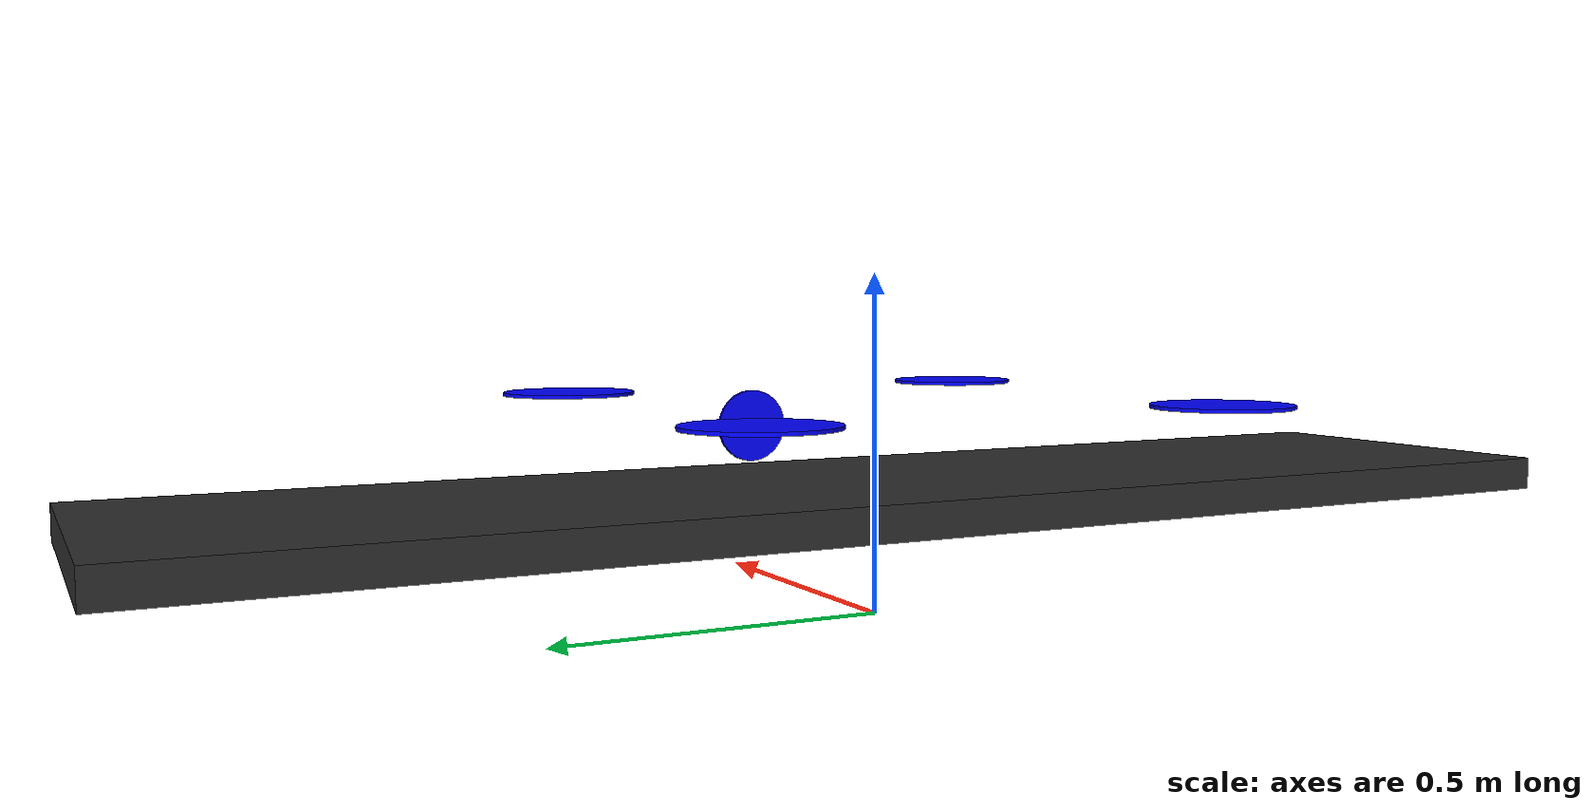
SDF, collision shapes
<?xml version="1.0"?>
<sdf version='1.10'>
  <model name='twostone1'>
    <pose>0 0 0.246 0 0 0</pose>
    <link name='base_link'>
      <pose>0 0 0 0 0 0</pose>
      <inertial>
        <pose>0 0 0 0 0 0</pose>
        <mass>5</mass>
        <inertia>
          <ixx>0.477708333333</ixx>
          <ixy>0</ixy>
          <ixz>0</ixz>
          <iyy>0.341666666667</iyy>
          <iyz>0</iyz>
          <izz>0.811041666667</izz>
        </inertia>
      </inertial>
      <collision name='base_link_collision'>
        <pose>0 0 -0.07 0 0 0</pose>
        <geometry>
          <box>
            <size>0.55 2.144 0.05</size>
          </box>
        </geometry>
        <surface>
          <contact>
            <ode>
              <kp>100000</kp>
              <kd>1.0</kd>
              <max_vel>0.1</max_vel>
              <min_depth>0.001</min_depth>
            </ode>
          </contact>
          <friction>
            <ode/>
          </friction>
        </surface>
      </collision>
      <visual name='base_link_visual'>
        <pose>0.13 0 0 0 0 3.1415926536</pose>
        <geometry>
          <mesh>
            <scale>1 1 1</scale>
            <uri>model://twostone1/meshes/test.dae</uri>
          </mesh>
        </geometry>
        <material>
          <ambient>.175 .175 .175 1.0</ambient>
          <diffuse>.175 .175 .175 1.0</diffuse>
        </material>
      </visual>

      <gravity>1</gravity>
      <velocity_decay/>
      <self_collide>0</self_collide>
       <sensor name="imu_sensor" type="imu">
        <always_on>1</always_on>
        <update_rate>250</update_rate>
      </sensor>
      <sensor name="ms5611" type="altimeter">
        <always_on>true</always_on>
        <update_rate>10</update_rate>
        <altimeter>
          <vertical_position>
            <noise type="gaussian">
              <mean>0.0</mean>
              <stddev>1.0</stddev>
              <bias_mean>0.0</bias_mean>
              <bias_stddev>1.0</bias_stddev>
            </noise>
          </vertical_position>
          <vertical_velocity>
            <noise type="gaussian">
              <mean>0.0</mean>
              <stddev>1.0</stddev>
              <bias_mean>0.0</bias_mean>
              <bias_stddev>1.0</bias_stddev>
            </noise>
          </vertical_velocity>
        </altimeter>
      </sensor>
      <sensor name="LSM303D" type="magnetometer">
        <always_on>true</always_on>
        <update_rate>50</update_rate>
      </sensor>
      <sensor name="air_pressure_sensor" type="air_pressure">
        <always_on>1</always_on>
        <update_rate>50</update_rate>
        <air_pressure>
          <pressure>
            <noise type="gaussian">
              <mean>0</mean>
              <stddev>0.01</stddev>
            </noise>
          </pressure>
        </air_pressure>
      </sensor>
    </link>
    <link name='rotor_0'>
      <pose>0.357 -0.353 0.07 0 0 0</pose>
      <inertial>
        <pose>0 0 0 0 0 0</pose>
        <mass>0.005</mass>
        <inertia>
          <ixx>9.75e-07</ixx>
          <ixy>0</ixy>
          <ixz>0</ixz>
          <iyy>0.000166704</iyy>
          <iyz>0</iyz>
          <izz>0.000167604</izz>
        </inertia>
      </inertial>
      <collision name='rotor_0_collision'>
        <pose>0 0 0 0 0 0</pose>
        <geometry>
          <cylinder>
            <length>0.005</length>
            <radius>0.1</radius>
          </cylinder>
        </geometry>
        <surface>
          <contact>
            <ode/>
          </contact>
          <friction>
            <ode/>
          </friction>
        </surface>
      </collision>
      <visual name='rotor_0_visual'>
        <pose>0 0 0 0 0 0</pose>
        <geometry>
          <mesh>
            <scale>1 1 1</scale>
            <uri>model://twostone1/meshes/iris_prop_ccw.dae</uri>
          </mesh>
        </geometry>
        <material>
          <ambient>0 0 1 1.0</ambient>
          <diffuse>0 0 1 1.0</diffuse>
        </material>
      </visual>
      <gravity>1</gravity>
      <velocity_decay/>
      <self_collide>0</self_collide>
    </link>
    <joint name='rotor_0_joint' type='revolute'>
      <child>rotor_0</child>
      <parent>base_link</parent>
      <axis>
        <xyz>0 0 1</xyz>
        <limit>
          <lower>-1e+16</lower>
          <upper>1e+16</upper>
        </limit>
        <dynamics>
          <spring_reference>0</spring_reference>
          <spring_stiffness>0</spring_stiffness>
        </dynamics>
      </axis>
    </joint>
    <link name='rotor_1'>
      <pose>-0.35 0.347 0.07 0 0 0</pose>
      <inertial>
        <pose>0 0 0 0 0 0</pose>
        <mass>0.005</mass>
        <inertia>
          <ixx>9.75e-07</ixx>
          <ixy>0</ixy>
          <ixz>0</ixz>
          <iyy>0.000166704</iyy>
          <iyz>0</iyz>
          <izz>0.000167604</izz>
        </inertia>
      </inertial>
      <collision name='rotor_1_collision'>
        <pose>0 0 0 0 0 0</pose>
        <geometry>
          <cylinder>
            <length>0.005</length>
            <radius>0.1</radius>
          </cylinder>
        </geometry>
        <surface>
          <contact>
            <ode/>
          </contact>
          <friction>
            <ode/>
          </friction>
        </surface>
      </collision>
      <visual name='rotor_1_visual'>
        <pose>0 0 0 0 0 0</pose>
        <geometry>
          <mesh>
            <scale>1 1 1</scale>
            <uri>model://twostone1/meshes/iris_prop_ccw.dae</uri>
          </mesh>
        </geometry>
        <material>
          <ambient>0 0 1 1.0</ambient>
          <diffuse>0 0 1 1.0</diffuse>
        </material>
      </visual>
      <gravity>1</gravity>
      <velocity_decay/>
      <self_collide>0</self_collide>
    </link>
    <joint name='rotor_1_joint' type='revolute'>
      <child>rotor_1</child>
      <parent>base_link</parent>
      <axis>
        <xyz>0 0 1</xyz>
        <limit>
          <lower>-1e+16</lower>
          <upper>1e+16</upper>
        </limit>
        <dynamics>
          <spring_reference>0</spring_reference>
          <spring_stiffness>0</spring_stiffness>
        </dynamics>
      </axis>
    </joint>
    <link name='rotor_2'>
      <pose>0.357 0.344 0.07 0 0 0</pose>
      <inertial>
        <pose>0 0 0 0 0 0</pose>
        <mass>0.005</mass>
        <inertia>
          <ixx>9.75e-07</ixx>
          <ixy>0</ixy>
          <ixz>0</ixz>
          <iyy>0.000166704</iyy>
          <iyz>0</iyz>
          <izz>0.000167604</izz>
        </inertia>
      </inertial>
      <collision name='rotor_2_collision'>
        <pose>0 0 0 0 0 0</pose>
        <geometry>
          <cylinder>
            <length>0.005</length>
            <radius>0.1</radius>
          </cylinder>
        </geometry>
        <surface>
          <contact>
            <ode/>
          </contact>
          <friction>
            <ode/>
          </friction>
        </surface>
      </collision>
      <visual name='rotor_2_visual'>
        <pose>0 0 0 0 0 0</pose>
        <geometry>
          <mesh>
            <scale>1 1 1</scale>
            <uri>model://twostone1/meshes/iris_prop_ccw.dae</uri>
          </mesh>
        </geometry>
        <material>
          <ambient>0 0 1 1.0</ambient>
          <diffuse>0 0 1 1.0</diffuse>
        </material>
      </visual>
      <gravity>1</gravity>
      <velocity_decay/>
      <self_collide>0</self_collide>
    </link>
    <joint name='rotor_2_joint' type='revolute'>
      <child>rotor_2</child>
      <parent>base_link</parent>
      <axis>
        <xyz>0 0 1</xyz>
        <limit>
          <lower>-1e+16</lower>
          <upper>1e+16</upper>
        </limit>
        <dynamics>
          <spring_reference>0</spring_reference>
          <spring_stiffness>0</spring_stiffness>
        </dynamics>
      </axis>
    </joint>
    <link name='rotor_3'>
      <pose>-0.352 -0.353 0.07 0 0 0</pose>
      <inertial>
        <pose>0 0 0 0 0 0</pose>
        <mass>0.005</mass>
        <inertia>
          <ixx>9.75e-07</ixx>
          <ixy>0</ixy>
          <ixz>0</ixz>
          <iyy>0.000166704</iyy>
          <iyz>0</iyz>
          <izz>0.000167604</izz>
        </inertia>
      </inertial>
      <collision name='rotor_3_collision'>
        <pose>0 0 0 0 0 0</pose>
        <geometry>
          <cylinder>
            <length>0.005</length>
            <radius>0.1</radius>
          </cylinder>
        </geometry>
        <surface>
          <contact>
            <ode/>
          </contact>
          <friction>
            <ode/>
          </friction>
        </surface>
      </collision>
      <visual name='rotor_3_visual'>
        <pose>0 0 0 0 0 0</pose>
        <geometry>
          <mesh>
            <scale>1 1 1</scale>
            <uri>model://twostone1/meshes/iris_prop_ccw.dae</uri>
          </mesh>
        </geometry>
        <material>
          <ambient>0 0 1 1.0</ambient>
          <diffuse>0 0 1 1.0</diffuse>
        </material>
      </visual>
      <gravity>1</gravity>
      <velocity_decay/>
      <self_collide>0</self_collide>
    </link>
    <joint name='rotor_3_joint' type='revolute'>
      <child>rotor_3</child>
      <parent>base_link</parent>
      <axis>
        <xyz>0 0 1</xyz>
        <limit>
          <lower>-1e+16</lower>
          <upper>1e+16</upper>
        </limit>
        <dynamics>
          <spring_reference>0</spring_reference>
          <spring_stiffness>0</spring_stiffness>
        </dynamics>
      </axis>
    </joint>

    <link name='rotor_puller'>
      <pose>0.47 0 0 0 1.57 0</pose>
      <inertial>
        <pose>0 0 0 0 0 0</pose>
        <mass>0.005</mass>
        <inertia>
          <ixx>9.75e-07</ixx>
          <ixy>0</ixy>
          <ixz>0</ixz>
          <iyy>0.000166704</iyy>
          <iyz>0</iyz>
          <izz>0.000167604</izz>
        </inertia>
      </inertial>
      <collision name='rotor_puller_collision'>
        <pose>0.0 0 -0.04 0 0 0</pose>
        <geometry>
          <cylinder>
            <length>0.005</length>
            <radius>0.06</radius>
          </cylinder>
        </geometry>
        <surface>
          <contact>
            <ode/>
          </contact>
          <friction>
            <ode/>
          </friction>
        </surface>
      </collision>
      <visual name='rotor_puller_visual'>
        <pose>0.02 0 -0.04 0 0 0</pose>
        <geometry>
          <mesh>
            <scale>0.8 0.8 0.8</scale>
            <uri>model://twostone1/meshes/iris_prop_ccw.dae</uri>
          </mesh>
        </geometry>
        <material>
          <ambient>0 0 1 1.0</ambient>
          <diffuse>0 0 1 1.0</diffuse>
        </material>
      </visual>
      <gravity>1</gravity>
      <velocity_decay/>
      <self_collide>0</self_collide>
    </link>
    <joint name='rotor_puller_joint' type='revolute'>
      <pose>0.0 0 0.0 0 -1.57 0</pose>
      <child>rotor_puller</child>
      <parent>base_link</parent>
      <axis>
        <xyz>1 0 0</xyz>
        <limit>
          <lower>-1e+16</lower>
          <upper>1e+16</upper>
        </limit>
        <dynamics>
          <spring_reference>0</spring_reference>
          <spring_stiffness>0</spring_stiffness>
        </dynamics>
      </axis>
    </joint>

    <link name="left_elevon">
      <inertial>
        <mass>0.00000001</mass>
        <inertia>
          <ixx>0.000001</ixx>
          <ixy>0.0</ixy>
          <iyy>0.000001</iyy>
          <ixz>0.0</ixz>
          <iyz>0.0</iyz>
          <izz>0.000001</izz>
        </inertia>
        <pose>0 0.3 0 0.00 0 0.0</pose>
      </inertial>

    </link>
    <link name="right_elevon">
      <inertial>
        <mass>0.00000001</mass>
        <inertia>
          <ixx>0.000001</ixx>
          <ixy>0.0</ixy>
          <iyy>0.000001</iyy>
          <ixz>0.0</ixz>
          <iyz>0.0</iyz>
          <izz>0.000001</izz>
        </inertia>
        <pose>0 -0.6 0 0.00 0 0.0</pose>
      </inertial>

    </link>
    <link name="elevator">
      <inertial>
        <mass>0.00000001</mass>
        <inertia>
          <ixx>0.000001</ixx>
          <ixy>0.0</ixy>
          <iyy>0.000001</iyy>
          <ixz>0.0</ixz>
          <iyz>0.0</iyz>
          <izz>0.000001</izz>
        </inertia>
        <pose> -0.5 0 0 0.00 0 0.0</pose>
      </inertial>
    </link>
    <joint name='servo_0' type='revolute'>
      <parent>base_link</parent>
      <child>left_elevon</child>
      <pose>-0.18 0.6 -0.005 0 0 0.265</pose>
      <axis>
        <xyz>0 1 0</xyz>
        <limit>
          <lower>-0.53</lower>
          <upper>0.53</upper>
        </limit>
        <dynamics>
          <damping>1.000</damping>
        </dynamics>
      </axis>
      <physics>
        <ode>
          <implicit_spring_damper>1</implicit_spring_damper>
        </ode>
      </physics>
    </joint>
    <joint name='servo_1' type='revolute'>
      <parent>base_link</parent>
      <child>right_elevon</child>
      <pose>-0.18 -0.6 -0.005 0 0 -0.265</pose>
      <axis>
        <xyz>0 1 0</xyz>
        <limit>
          <lower>-0.53</lower>
          <upper>0.53</upper>
        </limit>
        <dynamics>
          <damping>1.000</damping>
        </dynamics>
      </axis>
      <physics>
        <ode>
          <implicit_spring_damper>1</implicit_spring_damper>
        </ode>
      </physics>
    </joint>
    <joint name='servo_2' type='revolute'>
      <parent>base_link</parent>
      <child>elevator</child>
      <pose> -0.5 0 0 0 0 0</pose>
      <axis>
        <xyz>0 1 0</xyz>
        <limit>
          <!-- -30/+30 deg. -->
          <lower>-0.53</lower>
          <upper>0.53</upper>
        </limit>
        <dynamics>
          <damping>1.000</damping>
        </dynamics>
      </axis>
      <physics>
        <ode>
          <implicit_spring_damper>1</implicit_spring_damper>
        </ode>
      </physics>
    </joint>
    <plugin filename="gz-sim-lift-drag-system" name="gz::sim::systems::LiftDrag">
      <a0>0.05984281113</a0>
      <cla>4.752798721</cla>
      <cda>0.6417112299</cda>
      <cma>0.0</cma>
      <alpha_stall>0.3391428111</alpha_stall>
      <cla_stall>-3.85</cla_stall>
      <cda_stall>-0.9233984055</cda_stall>
      <cma_stall>0</cma_stall>
      <cp>-0.05 0.3 0.05</cp>
      <area>0.50</area>
      <air_density>1.2041</air_density>
      <forward>1 0 0</forward>
      <upward>0 0 1</upward>
      <link_name>base_link</link_name>
      <control_joint_name>servo_0</control_joint_name>
      <control_joint_rad_to_cl>-1.0</control_joint_rad_to_cl>
    </plugin>
    <plugin
      filename="gz-sim-joint-position-controller-system" name="gz::sim::systems::JointPositionController">
      <joint_name>servo_0</joint_name>
      <sub_topic>servo_0</sub_topic>
    </plugin>
    <plugin filename="gz-sim-lift-drag-system" name="gz::sim::systems::LiftDrag">
      <a0>0.05984281113</a0>
      <cla>4.752798721</cla>
      <cda>0.6417112299</cda>
      <cma>0.0</cma>
      <alpha_stall>0.3391428111</alpha_stall>
      <cla_stall>-3.85</cla_stall>
      <cda_stall>-0.9233984055</cda_stall>
      <cma_stall>0</cma_stall>
      <cp>-0.05 -0.3 0.05</cp>
      <area>0.50</area>
      <air_density>1.2041</air_density>
      <forward>1 0 0</forward>
      <upward>0 0 1</upward>
      <link_name>base_link</link_name>
      <control_joint_name>servo_1</control_joint_name>
      <control_joint_rad_to_cl>-1.0</control_joint_rad_to_cl>
    </plugin>
    <plugin
      filename="gz-sim-joint-position-controller-system" name="gz::sim::systems::JointPositionController">
      <joint_name>servo_1</joint_name>
      <sub_topic>servo_1</sub_topic>
    </plugin>
    <plugin filename="gz-sim-lift-drag-system" name="gz::sim::systems::LiftDrag">
      <a0>-0.2</a0>
      <cla>4.752798721</cla>
      <cda>0.6417112299</cda>
      <cma>0.0</cma>
      <alpha_stall>0.3391428111</alpha_stall>
      <cla_stall>-3.85</cla_stall>
      <cda_stall>-0.9233984055</cda_stall>
      <cma_stall>0</cma_stall>
      <cp>-0.5 0 0</cp>
      <area>0.01</area>
      <air_density>1.2041</air_density>
      <forward>1 0 0</forward>
      <upward>0 0 1</upward>
      <link_name>base_link</link_name>
      <control_joint_name>servo_2</control_joint_name>
          <control_joint_name>servo_2</control_joint_name>
      <control_joint_rad_to_cl>-12.0</control_joint_rad_to_cl>
    </plugin>
    <plugin
      filename="gz-sim-joint-position-controller-system" name="gz::sim::systems::JointPositionController">
      <joint_name>servo_2</joint_name>
      <sub_topic>servo_2</sub_topic>
    </plugin>
    <plugin filename="gz-sim-multicopter-motor-model-system" name="gz::sim::systems::MulticopterMotorModel">
      <jointName>rotor_0_joint</jointName>
      <linkName>rotor_0</linkName>
      <turningDirection>ccw</turningDirection>
      <timeConstantUp>0.0125</timeConstantUp>
      <timeConstantDown>0.025</timeConstantDown>
      <maxRotVelocity>1500</maxRotVelocity>
      <motorConstant>2e-05</motorConstant>
      <momentConstant>0.06</momentConstant>
      <commandSubTopic>command/motor_speed</commandSubTopic>
      <motorNumber>0</motorNumber>
      <rotorDragCoefficient>0.000106428</rotorDragCoefficient>
      <rollingMomentCoefficient>1e-06</rollingMomentCoefficient>
      <rotorVelocitySlowdownSim>20</rotorVelocitySlowdownSim>
      <motorType>velocity</motorType>
    </plugin>
    <plugin filename="gz-sim-multicopter-motor-model-system" name="gz::sim::systems::MulticopterMotorModel">
      <jointName>rotor_1_joint</jointName>
      <linkName>rotor_1</linkName>
      <turningDirection>ccw</turningDirection>
      <timeConstantUp>0.0125</timeConstantUp>
      <timeConstantDown>0.025</timeConstantDown>
      <maxRotVelocity>1500</maxRotVelocity>
      <motorConstant>2e-05</motorConstant>
      <momentConstant>0.06</momentConstant>
      <commandSubTopic>command/motor_speed</commandSubTopic>
      <motorNumber>1</motorNumber>
      <rotorDragCoefficient>0.000106428</rotorDragCoefficient>
      <rollingMomentCoefficient>1e-06</rollingMomentCoefficient>
      <rotorVelocitySlowdownSim>20</rotorVelocitySlowdownSim>
      <motorType>velocity</motorType>
    </plugin>
    <plugin
      filename="gz-sim-multicopter-motor-model-system"
      name="gz::sim::systems::MulticopterMotorModel">
      <jointName>rotor_2_joint</jointName>
      <linkName>rotor_2</linkName>
      <turningDirection>cw</turningDirection>
      <timeConstantUp>0.0125</timeConstantUp>
      <timeConstantDown>0.025</timeConstantDown>
      <maxRotVelocity>1500</maxRotVelocity>
      <motorConstant>2e-05</motorConstant>
      <momentConstant>0.06</momentConstant>
      <commandSubTopic>command/motor_speed</commandSubTopic>
      <motorNumber>2</motorNumber>
      <rotorDragCoefficient>0.000106428</rotorDragCoefficient>
      <rollingMomentCoefficient>1e-06</rollingMomentCoefficient>
      <rotorVelocitySlowdownSim>20</rotorVelocitySlowdownSim>
      <motorType>velocity</motorType>
    </plugin>
    <plugin
      filename="gz-sim-multicopter-motor-model-system"
      name="gz::sim::systems::MulticopterMotorModel">
      <jointName>rotor_3_joint</jointName>
      <linkName>rotor_3</linkName>
      <turningDirection>cw</turningDirection>
      <timeConstantUp>0.0125</timeConstantUp>
      <timeConstantDown>0.025</timeConstantDown>
      <maxRotVelocity>1500</maxRotVelocity>
      <motorConstant>2e-05</motorConstant>
      <momentConstant>0.06</momentConstant>
      <commandSubTopic>command/motor_speed</commandSubTopic>
      <motorNumber>3</motorNumber>
      <rotorDragCoefficient>0.000106428</rotorDragCoefficient>
      <rollingMomentCoefficient>1e-06</rollingMomentCoefficient>
      <rotorVelocitySlowdownSim>20</rotorVelocitySlowdownSim>
      <motorType>velocity</motorType>
    </plugin>
    <plugin
      filename="gz-sim-multicopter-motor-model-system"
      name="gz::sim::systems::MulticopterMotorModel">
      <jointName>rotor_puller_joint</jointName>
      <linkName>rotor_puller</linkName>
      <turningDirection>cw</turningDirection>
      <timeConstantUp>0.0125</timeConstantUp>
      <timeConstantDown>0.025</timeConstantDown>
      <maxRotVelocity>3500</maxRotVelocity>
      <motorConstant>8.54858e-06</motorConstant>
      <momentConstant>0.01</momentConstant>
      <commandSubTopic>command/motor_speed</commandSubTopic>
      <motorNumber>4</motorNumber>
      <rotorDragCoefficient>0.000106428</rotorDragCoefficient>
      <rollingMomentCoefficient>1e-06</rollingMomentCoefficient>
      <rotorVelocitySlowdownSim>20</rotorVelocitySlowdownSim>
      <motorType>velocity</motorType>
    </plugin>

    <static>0</static>
  </model>
</sdf>
